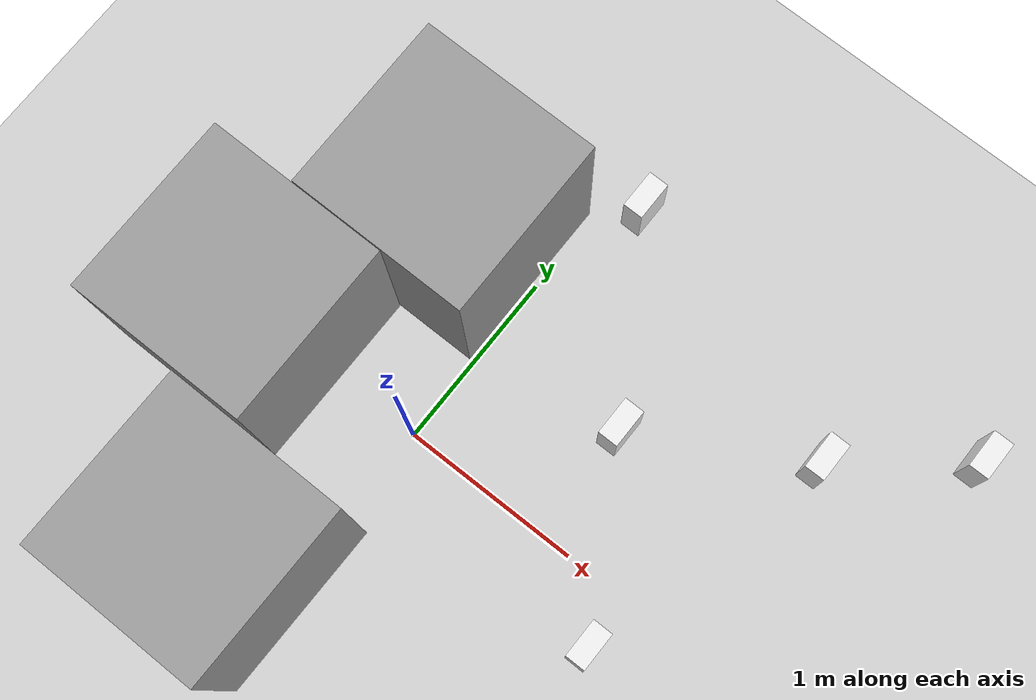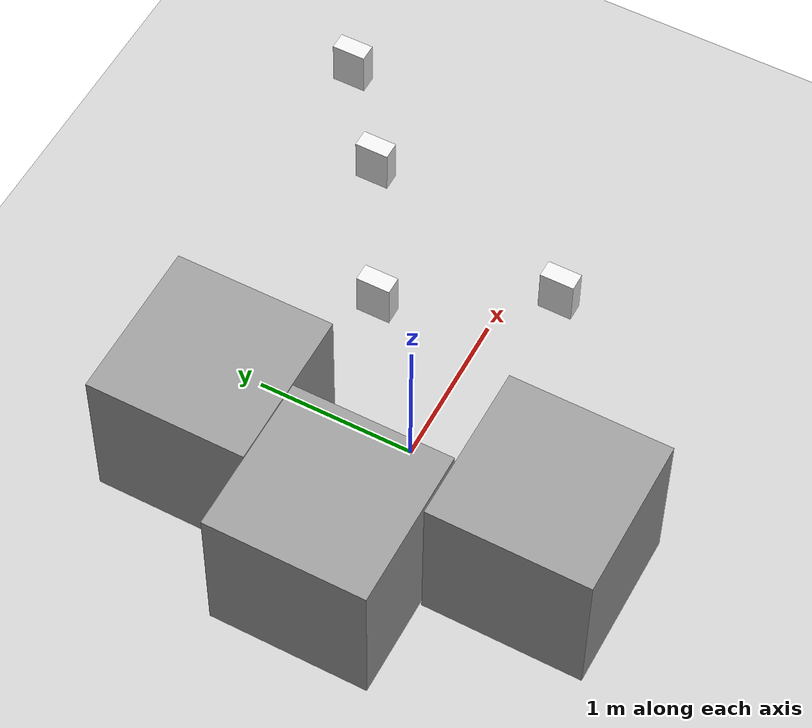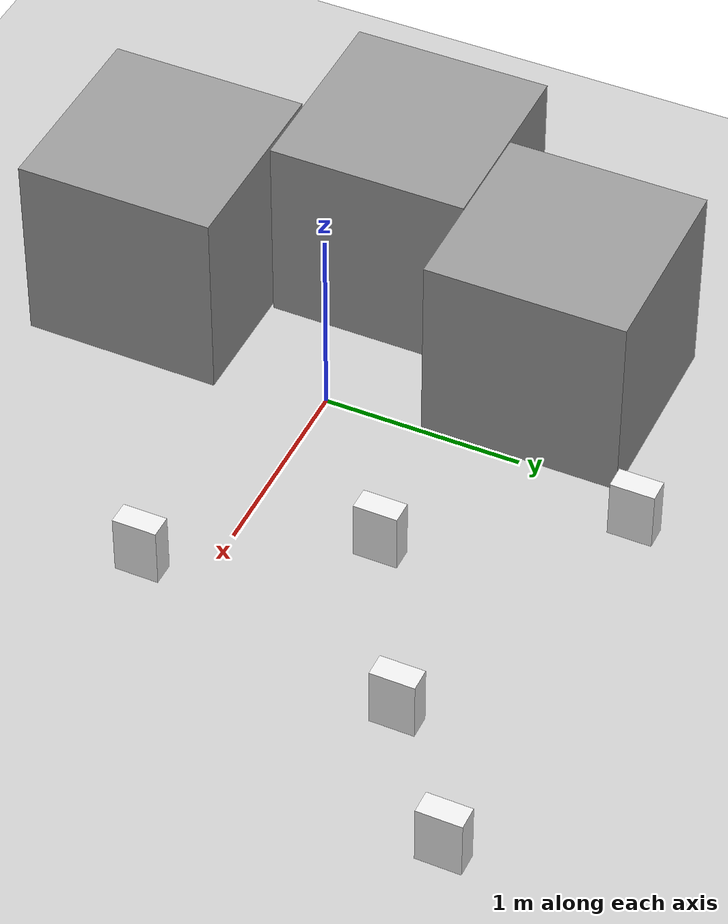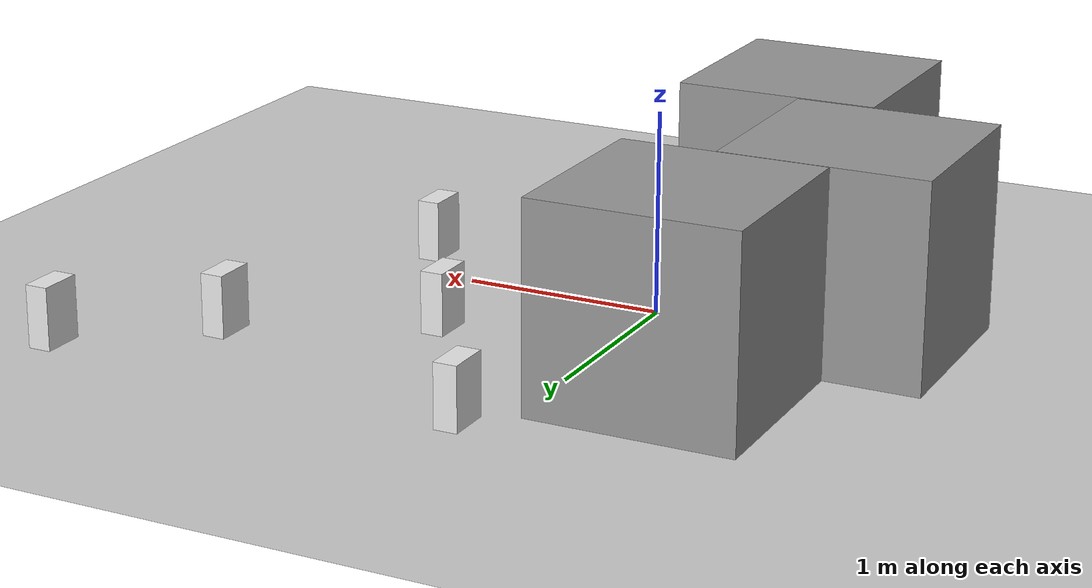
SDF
<sdf version="1.7">
 <world name="default">
  <light name="sun" type="directional">
   <pose>0 0 10 0 -0 0</pose>
   <diffuse>0.8 0.8 0.8 1</diffuse>
   <specular>0.2 0.2 0.2 1</specular>
   <attenuation>
    <range>1000</range>
    <constant>0.9</constant>
    <linear>0.01</linear>
    <quadratic>0.001</quadratic>
   </attenuation>
   <direction>-0.5 0.1 -0.9</direction>
   <spot><inner_angle>0</inner_angle><outer_angle>0</outer_angle><falloff>0</falloff></spot>
  </light>
  <model name="ground_plane">
   <static>1</static>
   <link name="link">
    <collision name="collision">
     <geometry><plane><normal>0 0 1</normal><size>100 100</size></plane></geometry>
     <surface>
      <contact><collide_bitmask>65535</collide_bitmask></contact>
      <friction><ode><mu>100</mu><mu2>50</mu2></ode></friction>
     </surface>
    </collision>
    <visual name="visual">
     <cast_shadows>0</cast_shadows>
     <geometry><plane><normal>0 0 1</normal><size>100 100</size></plane></geometry>
     <material>
      <script><uri>file://media/materials/scripts/gazebo.material</uri><name>Gazebo/Grey</name></script>
     </material>
    </visual>
   </link>
  </model>
  <gravity>0 0 -9.8</gravity>
  <magnetic_field>6e-06 2.3e-05 -4.2e-05</magnetic_field>
  <atmosphere type="adiabatic"/>
  <physics type="ode">
   <max_step_size>0.001</max_step_size>
   <real_time_factor>1</real_time_factor>
   <real_time_update_rate>1000</real_time_update_rate>
  </physics>
  <scene><ambient>0.4 0.4 0.4 1</ambient><background>0.7 0.7 0.7 1</background><shadows>1</shadows></scene>
  <spherical_coordinates>
   <surface_model>EARTH_WGS84</surface_model>
   <latitude_deg>0</latitude_deg>
   <longitude_deg>0</longitude_deg>
   <elevation>0</elevation>
   <heading_deg>0</heading_deg>
  </spherical_coordinates>
  <light name="charge_light" type="spot">
   <pose>1.04085 2.21338 1 0 -0 0</pose>
   <diffuse>1 0 0 1</diffuse>
   <specular>1 0 0 1</specular>
   <direction>0 0 -1</direction>
   <attenuation><range>0</range><constant>0</constant><linear>0</linear><quadratic>0</quadratic></attenuation>
   <cast_shadows>0</cast_shadows>
   <spot><inner_angle>0.6</inner_angle><outer_angle>2</outer_angle><falloff>1</falloff></spot>
  </light>
  <model name="unit_box">
   <pose>-0.52499 0.985592 0.499995 1e-05 -0 0</pose>
   <link name="link">
    <inertial>
     <mass>1</mass>
     <inertia>
      <ixx>0.166667</ixx>
      <ixy>0</ixy>
      <ixz>0</ixz>
      <iyy>0.166667</iyy>
      <iyz>0</iyz>
      <izz>0.166667</izz>
     </inertia>
    </inertial>
    <collision name="collision"><geometry><box><size>1 1 1</size></box></geometry></collision>
    <visual name="visual">
     <geometry><box><size>1 1 1</size></box></geometry>
     <material>
      <script><name>Gazebo/Grey</name><uri>file://media/materials/scripts/gazebo.material</uri></script>
     </material>
    </visual>
   </link>
  </model>
  <model name="unit_box_0">
   <pose>-0.988586 -0.019004 0.499995 1e-05 -0 0</pose>
   <link name="link">
    <inertial>
     <mass>1</mass>
     <inertia>
      <ixx>0.166667</ixx>
      <ixy>0</ixy>
      <ixz>0</ixz>
      <iyy>0.166667</iyy>
      <iyz>0</iyz>
      <izz>0.166667</izz>
     </inertia>
    </inertial>
    <collision name="collision"><geometry><box><size>1 1 1</size></box></geometry></collision>
    <visual name="visual">
     <geometry><box><size>1 1 1</size></box></geometry>
     <material>
      <script><name>Gazebo/Grey</name><uri>file://media/materials/scripts/gazebo.material</uri></script>
     </material>
    </visual>
   </link>
  </model>
  <model name="unit_box_1">
   <pose>-0.368928 -1.03294 0.499995 0 -1e-05 -0.003836</pose>
   <link name="link">
    <inertial>
     <mass>1</mass>
     <inertia>
      <ixx>0.166667</ixx>
      <ixy>0</ixy>
      <ixz>0</ixz>
      <iyy>0.166667</iyy>
      <iyz>0</iyz>
      <izz>0.166667</izz>
     </inertia>
    </inertial>
    <collision name="collision"><geometry><box><size>1 1 1</size></box></geometry></collision>
    <visual name="visual">
     <geometry><box><size>1 1 1</size></box></geometry>
     <material>
      <script><name>Gazebo/Grey</name><uri>file://media/materials/scripts/gazebo.material</uri></script>
     </material>
    </visual>
   </link>
  </model>
  <model name="obs_block">
   <link name="link_0">
    <inertial>
     <mass>1</mass>
     <inertia>
      <ixx>0.166667</ixx>
      <ixy>0</ixy>
      <ixz>0</ixz>
      <iyy>0.166667</iyy>
      <iyz>0</iyz>
      <izz>0.166667</izz>
     </inertia>
    </inertial>
    <visual name="visual">
     <geometry><box><size>0.115 0.22 0.31</size></box></geometry>
     <material>
      <lighting>1</lighting>
      <script><uri>file://media/materials/scripts/gazebo.material</uri><name>Gazebo/White</name></script>
      <shader type="pixel"><normal_map>__default__</normal_map></shader>
      <ambient>1 1 1 1</ambient>
      <diffuse>1 1 1 1</diffuse>
      <specular>0.01 0.01 0.01 1</specular>
      <emissive>0 0 0 1</emissive>
     </material>
    </visual>
    <collision name="collision">
     <geometry><box><size>0.115 0.22 0.31</size></box></geometry>
     <surface>
      <friction>
       <ode><mu>1</mu><mu2>1</mu2><fdir1>0 0 0</fdir1><slip1>0</slip1><slip2>0</slip2></ode>
       <torsional>
        <coefficient>1</coefficient>
        <patch_radius>0</patch_radius>
        <surface_radius>0</surface_radius>
        <use_patch_radius>1</use_patch_radius>
        <ode><slip>0</slip></ode>
       </torsional>
      </friction>
      <bounce><restitution_coefficient>0</restitution_coefficient><threshold>1e+06</threshold></bounce>
      <contact>
       <collide_without_contact>0</collide_without_contact>
       <collide_without_contact_bitmask>1</collide_without_contact_bitmask>
       <collide_bitmask>1</collide_bitmask>
       <ode>
        <soft_cfm>0</soft_cfm>
        <soft_erp>0.2</soft_erp>
        <kp>1e+13</kp>
        <kd>1</kd>
        <max_vel>0.01</max_vel>
        <min_depth>0</min_depth>
       </ode>
       <bullet>
        <split_impulse>1</split_impulse>
        <split_impulse_penetration_threshold>-0.01</split_impulse_penetration_threshold>
        <soft_cfm>0</soft_cfm>
        <soft_erp>0.2</soft_erp>
        <kp>1e+13</kp>
        <kd>1</kd>
       </bullet>
      </contact>
     </surface>
    </collision>
   </link>
   <static>0</static>
   <pose>2.3337 1.65377 0.155 -3e-06 -1e-06 -0.000349</pose>
  </model>
  <model name="obs_block_0">
   <link name="link_0">
    <inertial>
     <mass>1</mass>
     <inertia>
      <ixx>0.166667</ixx>
      <ixy>0</ixy>
      <ixz>0</ixz>
      <iyy>0.166667</iyy>
      <iyz>0</iyz>
      <izz>0.166667</izz>
     </inertia>
    </inertial>
    <visual name="visual">
     <geometry><box><size>0.115 0.22 0.31</size></box></geometry>
     <material>
      <lighting>1</lighting>
      <script><uri>file://media/materials/scripts/gazebo.material</uri><name>Gazebo/White</name></script>
      <shader type="pixel"><normal_map>__default__</normal_map></shader>
      <ambient>1 1 1 1</ambient>
      <diffuse>1 1 1 1</diffuse>
      <specular>0.01 0.01 0.01 1</specular>
      <emissive>0 0 0 1</emissive>
     </material>
    </visual>
    <collision name="collision">
     <geometry><box><size>0.115 0.22 0.31</size></box></geometry>
     <surface>
      <friction>
       <ode><mu>1</mu><mu2>1</mu2><fdir1>0 0 0</fdir1><slip1>0</slip1><slip2>0</slip2></ode>
       <torsional>
        <coefficient>1</coefficient>
        <patch_radius>0</patch_radius>
        <surface_radius>0</surface_radius>
        <use_patch_radius>1</use_patch_radius>
        <ode><slip>0</slip></ode>
       </torsional>
      </friction>
      <bounce><restitution_coefficient>0</restitution_coefficient><threshold>1e+06</threshold></bounce>
      <contact>
       <collide_without_contact>0</collide_without_contact>
       <collide_without_contact_bitmask>1</collide_without_contact_bitmask>
       <collide_bitmask>1</collide_bitmask>
       <ode>
        <soft_cfm>0</soft_cfm>
        <soft_erp>0.2</soft_erp>
        <kp>1e+13</kp>
        <kd>1</kd>
        <max_vel>0.01</max_vel>
        <min_depth>0</min_depth>
       </ode>
       <bullet>
        <split_impulse>1</split_impulse>
        <split_impulse_penetration_threshold>-0.01</split_impulse_penetration_threshold>
        <soft_cfm>0</soft_cfm>
        <soft_erp>0.2</soft_erp>
        <kp>1e+13</kp>
        <kd>1</kd>
       </bullet>
      </contact>
     </surface>
    </collision>
   </link>
   <static>0</static>
   <pose>1.70812 1.15108 0.155 -2e-06 -0 -0.000269</pose>
  </model>
  <model name="obs_block_1">
   <link name="link_0">
    <inertial>
     <mass>1</mass>
     <inertia>
      <ixx>0.166667</ixx>
      <ixy>0</ixy>
      <ixz>0</ixz>
      <iyy>0.166667</iyy>
      <iyz>0</iyz>
      <izz>0.166667</izz>
     </inertia>
    </inertial>
    <visual name="visual">
     <geometry><box><size>0.115 0.22 0.31</size></box></geometry>
     <material>
      <lighting>1</lighting>
      <script><uri>file://media/materials/scripts/gazebo.material</uri><name>Gazebo/White</name></script>
      <shader type="pixel"><normal_map>__default__</normal_map></shader>
      <ambient>1 1 1 1</ambient>
      <diffuse>1 1 1 1</diffuse>
      <specular>0.01 0.01 0.01 1</specular>
      <emissive>0 0 0 1</emissive>
     </material>
    </visual>
    <collision name="collision">
     <geometry><box><size>0.115 0.22 0.31</size></box></geometry>
     <surface>
      <friction>
       <ode><mu>1</mu><mu2>1</mu2><fdir1>0 0 0</fdir1><slip1>0</slip1><slip2>0</slip2></ode>
       <torsional>
        <coefficient>1</coefficient>
        <patch_radius>0</patch_radius>
        <surface_radius>0</surface_radius>
        <use_patch_radius>1</use_patch_radius>
        <ode><slip>0</slip></ode>
       </torsional>
      </friction>
      <bounce><restitution_coefficient>0</restitution_coefficient><threshold>1e+06</threshold></bounce>
      <contact>
       <collide_without_contact>0</collide_without_contact>
       <collide_without_contact_bitmask>1</collide_without_contact_bitmask>
       <collide_bitmask>1</collide_bitmask>
       <ode>
        <soft_cfm>0</soft_cfm>
        <soft_erp>0.2</soft_erp>
        <kp>1e+13</kp>
        <kd>1</kd>
        <max_vel>0.01</max_vel>
        <min_depth>0</min_depth>
       </ode>
       <bullet>
        <split_impulse>1</split_impulse>
        <split_impulse_penetration_threshold>-0.01</split_impulse_penetration_threshold>
        <soft_cfm>0</soft_cfm>
        <soft_erp>0.2</soft_erp>
        <kp>1e+13</kp>
        <kd>1</kd>
       </bullet>
      </contact>
     </surface>
    </collision>
   </link>
   <static>0</static>
   <pose>1.35349 -0.291864 0.155 -2e-06 -0 -0.000187</pose>
  </model>
  <model name="obs_block_2">
   <link name="link_0">
    <inertial>
     <mass>1</mass>
     <inertia>
      <ixx>0.166667</ixx>
      <ixy>0</ixy>
      <ixz>0</ixz>
      <iyy>0.166667</iyy>
      <iyz>0</iyz>
      <izz>0.166667</izz>
     </inertia>
    </inertial>
    <visual name="visual">
     <geometry><box><size>0.115 0.22 0.31</size></box></geometry>
     <material>
      <lighting>1</lighting>
      <script><uri>file://media/materials/scripts/gazebo.material</uri><name>Gazebo/White</name></script>
      <shader type="pixel"><normal_map>__default__</normal_map></shader>
      <ambient>1 1 1 1</ambient>
      <diffuse>1 1 1 1</diffuse>
      <specular>0.01 0.01 0.01 1</specular>
      <emissive>0 0 0 1</emissive>
     </material>
    </visual>
    <collision name="collision">
     <geometry><box><size>0.115 0.22 0.31</size></box></geometry>
     <surface>
      <friction>
       <ode><mu>1</mu><mu2>1</mu2><fdir1>0 0 0</fdir1><slip1>0</slip1><slip2>0</slip2></ode>
       <torsional>
        <coefficient>1</coefficient>
        <patch_radius>0</patch_radius>
        <surface_radius>0</surface_radius>
        <use_patch_radius>1</use_patch_radius>
        <ode><slip>0</slip></ode>
       </torsional>
      </friction>
      <bounce><restitution_coefficient>0</restitution_coefficient><threshold>1e+06</threshold></bounce>
      <contact>
       <collide_without_contact>0</collide_without_contact>
       <collide_without_contact_bitmask>1</collide_without_contact_bitmask>
       <collide_bitmask>1</collide_bitmask>
       <ode>
        <soft_cfm>0</soft_cfm>
        <soft_erp>0.2</soft_erp>
        <kp>1e+13</kp>
        <kd>1</kd>
        <max_vel>0.01</max_vel>
        <min_depth>0</min_depth>
       </ode>
       <bullet>
        <split_impulse>1</split_impulse>
        <split_impulse_penetration_threshold>-0.01</split_impulse_penetration_threshold>
        <soft_cfm>0</soft_cfm>
        <soft_erp>0.2</soft_erp>
        <kp>1e+13</kp>
        <kd>1</kd>
       </bullet>
      </contact>
     </surface>
    </collision>
   </link>
   <static>0</static>
   <pose>0.81221 0.656636 0.155 1e-06 0 -0.000268</pose>
  </model>
  <model name="obs_block_3">
   <link name="link_0">
    <inertial>
     <mass>1</mass>
     <inertia>
      <ixx>0.166667</ixx>
      <ixy>0</ixy>
      <ixz>0</ixz>
      <iyy>0.166667</iyy>
      <iyz>0</iyz>
      <izz>0.166667</izz>
     </inertia>
    </inertial>
    <visual name="visual">
     <geometry><box><size>0.115 0.22 0.31</size></box></geometry>
     <material>
      <lighting>1</lighting>
      <script><uri>file://media/materials/scripts/gazebo.material</uri><name>Gazebo/White</name></script>
      <shader type="pixel"><normal_map>__default__</normal_map></shader>
      <ambient>1 1 1 1</ambient>
      <diffuse>1 1 1 1</diffuse>
      <specular>0.01 0.01 0.01 1</specular>
      <emissive>0 0 0 1</emissive>
     </material>
    </visual>
    <collision name="collision">
     <geometry><box><size>0.115 0.22 0.31</size></box></geometry>
     <surface>
      <friction>
       <ode><mu>1</mu><mu2>1</mu2><fdir1>0 0 0</fdir1><slip1>0</slip1><slip2>0</slip2></ode>
       <torsional>
        <coefficient>1</coefficient>
        <patch_radius>0</patch_radius>
        <surface_radius>0</surface_radius>
        <use_patch_radius>1</use_patch_radius>
        <ode><slip>0</slip></ode>
       </torsional>
      </friction>
      <bounce><restitution_coefficient>0</restitution_coefficient><threshold>1e+06</threshold></bounce>
      <contact>
       <collide_without_contact>0</collide_without_contact>
       <collide_without_contact_bitmask>1</collide_without_contact_bitmask>
       <collide_bitmask>1</collide_bitmask>
       <ode>
        <soft_cfm>0</soft_cfm>
        <soft_erp>0.2</soft_erp>
        <kp>1e+13</kp>
        <kd>1</kd>
        <max_vel>0.01</max_vel>
        <min_depth>0</min_depth>
       </ode>
       <bullet>
        <split_impulse>1</split_impulse>
        <split_impulse_penetration_threshold>-0.01</split_impulse_penetration_threshold>
        <soft_cfm>0</soft_cfm>
        <soft_erp>0.2</soft_erp>
        <kp>1e+13</kp>
        <kd>1</kd>
       </bullet>
      </contact>
     </surface>
    </collision>
   </link>
   <static>0</static>
   <pose>0.193035 1.66075 0.155 0 -0 -0.000214</pose>
  </model>
 </world>
</sdf>
